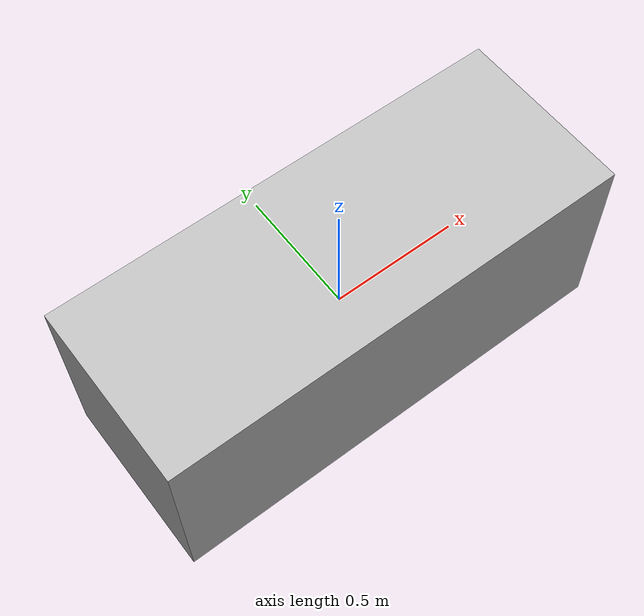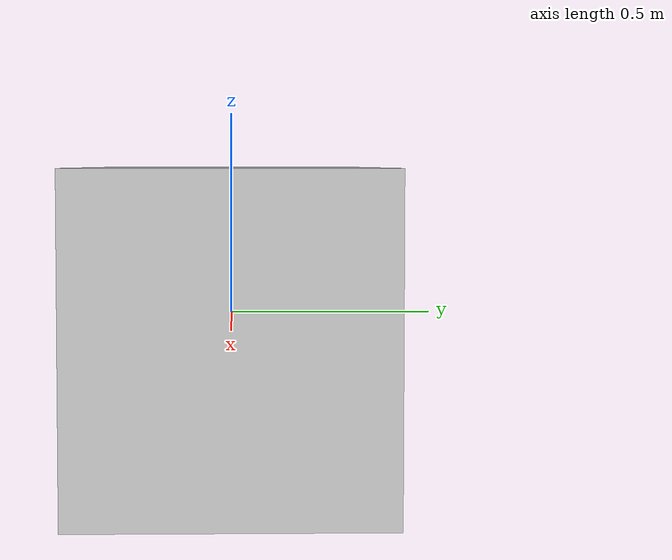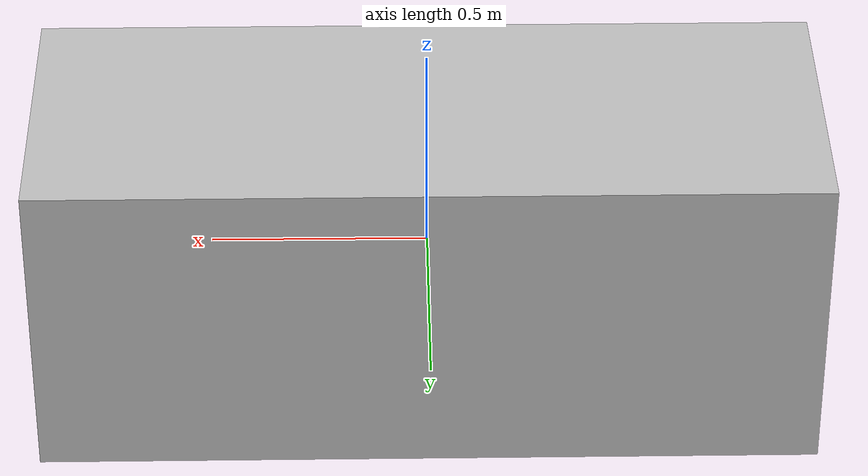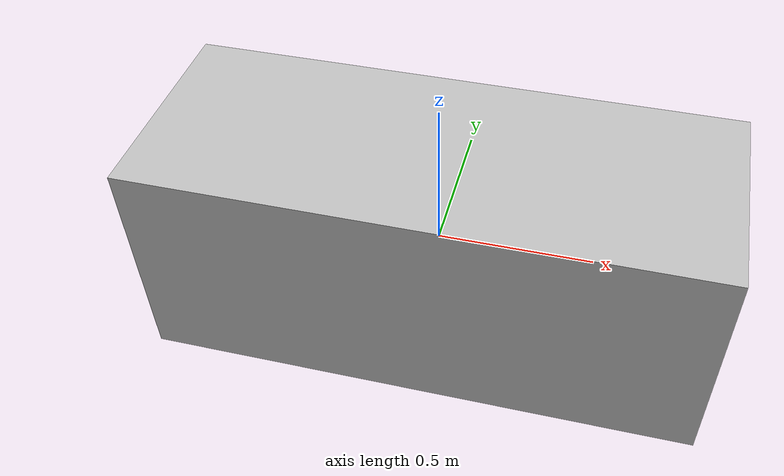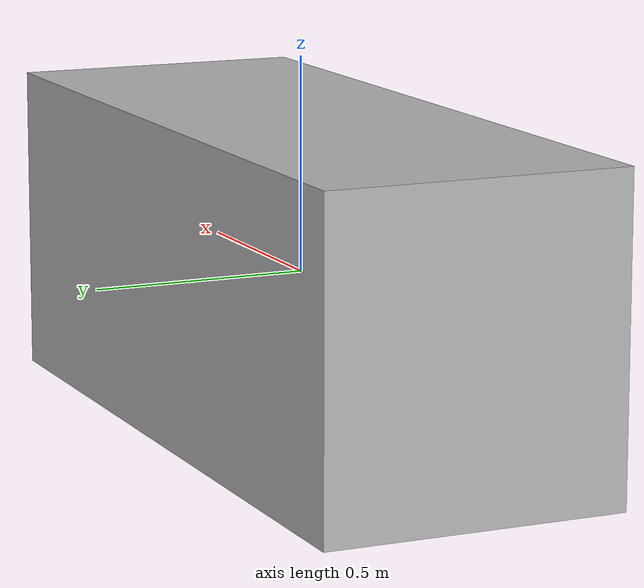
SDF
<?xml version='1.0'?>
<sdf version="1.4">
<model name="filling_line_box_2">
    <static>true</static>
    <link name="link">
      <pose>0 0 -0.005 0 0 0</pose>
      <collision name="collision">
        <geometry>
          <box>
            <size>1.8 0.7 0.74</size>
          </box>
        </geometry>
      </collision>
      <visual name="visual">
        <geometry>
          <box>
            <size>1.8 0.7 0.74</size>
          </box>
        </geometry>
      </visual>
    </link>
  </model>
</sdf>
